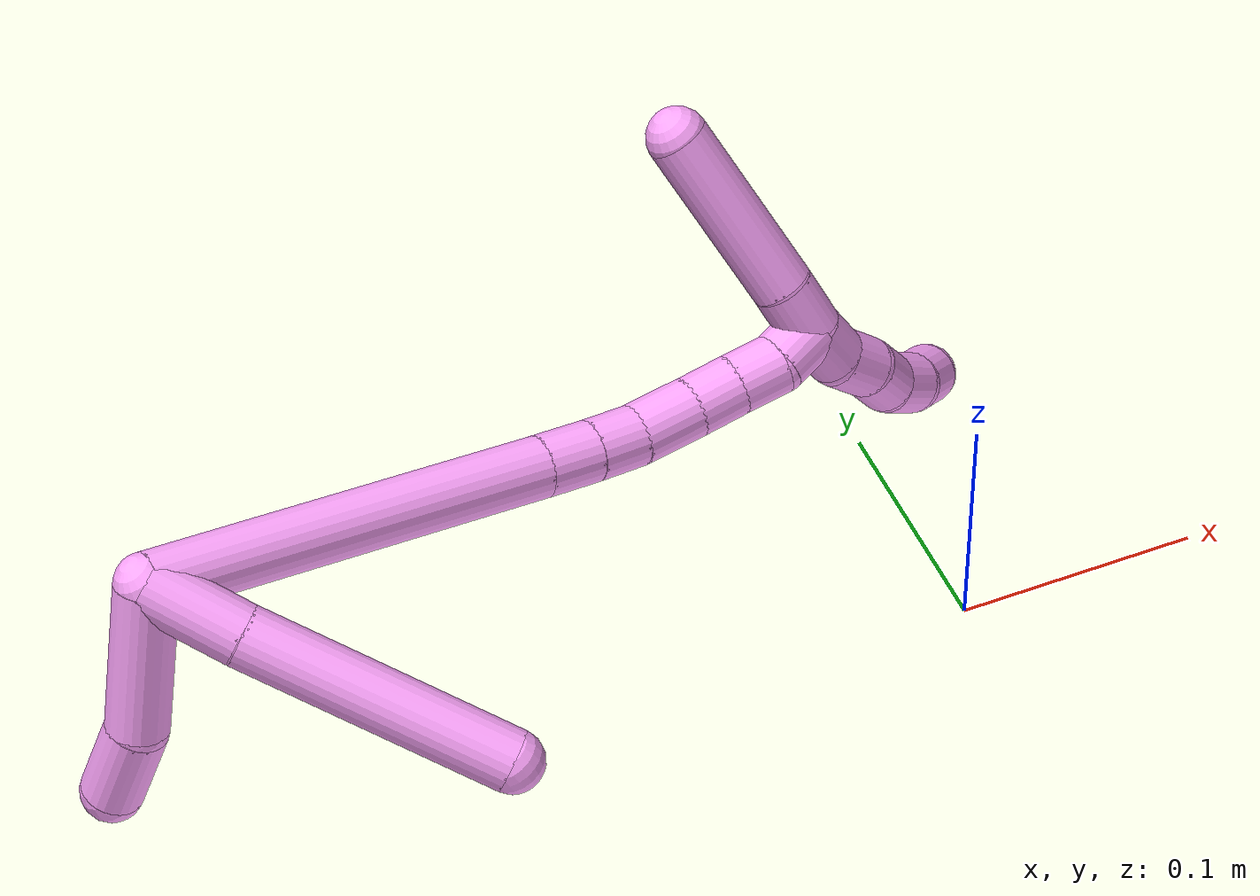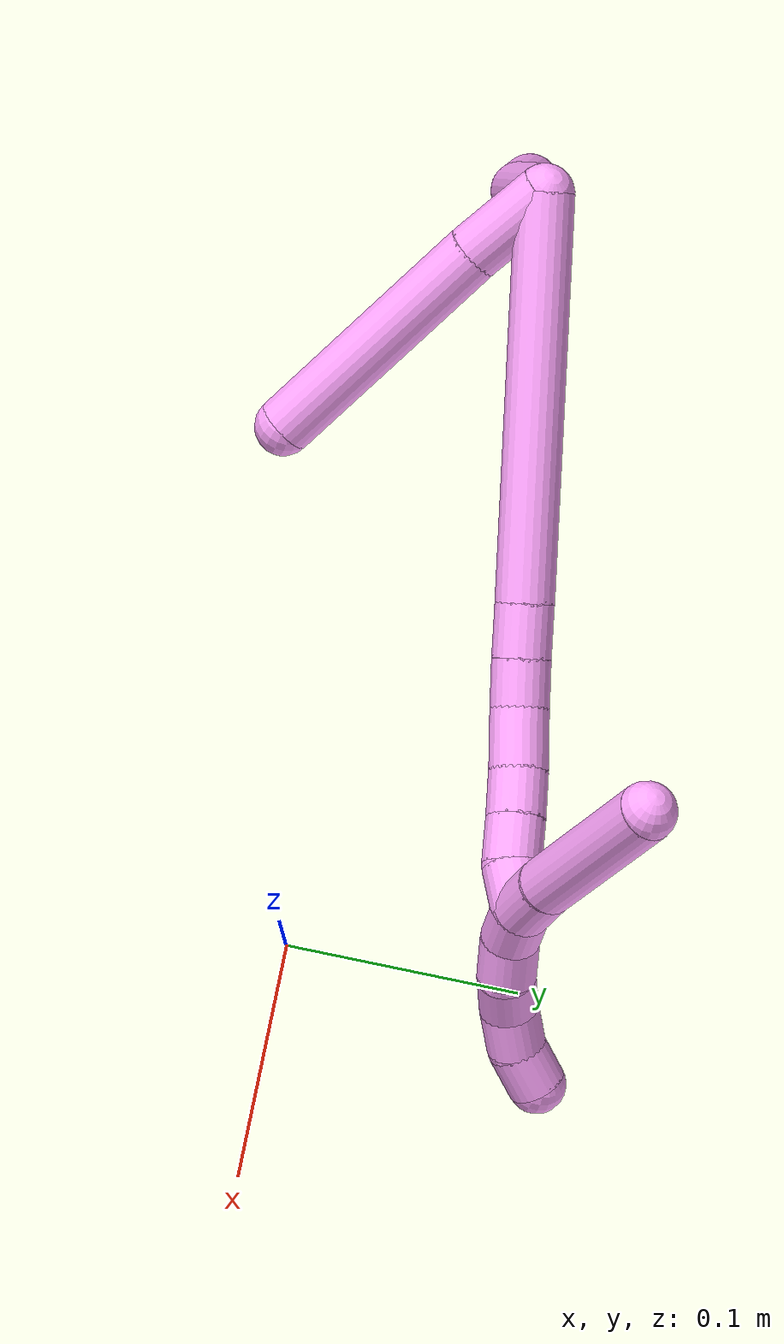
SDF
<sdf version="1.7">
 <world name="default">
  <model name="4">
   <static>0</static>
   <link name="4">
    <collision name="collision-cylinder-e_1_2_8">
     <pose>0.006975 -0.011369 -0.014772 2.48564 0.358029 0.977523</pose>
     <geometry><cylinder><radius>0.0125</radius><length>0.039806</length></cylinder></geometry>
     <surface>
      <friction><ode><mu>1.16</mu><mu2>1.16</mu2><slip1>0</slip1><slip2>0</slip2></ode></friction>
      <contact><ode><kp>1e+06</kp><kd>1</kd><max_vel>0</max_vel><min_depth>0.001</min_depth></ode></contact>
     </surface>
    </collision>
    <visual name="visual-cylinder-e_1_2_8">
     <pose>0.006975 -0.011369 -0.014772 2.48564 0.358029 0.977523</pose>
     <geometry><cylinder><radius>0.0125</radius><length>0.039806</length></cylinder></geometry>
     <material><ambient>1 0.65098 0.996078 1</ambient></material>
    </visual>
    <collision name="collision-cylinder-e_2_8_6">
     <pose>0.035883 -0.052636 -0.070297 2.50865 0.40944 1.13012</pose>
     <geometry><cylinder><radius>0.0125</radius><length>0.110194</length></cylinder></geometry>
     <surface>
      <friction><ode><mu>1.16</mu><mu2>1.16</mu2><slip1>0</slip1><slip2>0</slip2></ode></friction>
      <contact><ode><kp>1e+06</kp><kd>1</kd><max_vel>0</max_vel><min_depth>0.001</min_depth></ode></contact>
     </surface>
    </collision>
    <visual name="visual-cylinder-e_2_8_6">
     <pose>0.035883 -0.052636 -0.070297 2.50865 0.40944 1.13012</pose>
     <geometry><cylinder><radius>0.0125</radius><length>0.110194</length></cylinder></geometry>
     <material><ambient>1 0.65098 0.996078 1</ambient></material>
    </visual>
    <collision name="collision-cylinder-e_1_2_9">
     <pose>-0.019069 0.00307 -0.02559 -3.02221 -0.636999 2.78298</pose>
     <geometry><cylinder><radius>0.0125</radius><length>0.064122</length></cylinder></geometry>
     <surface>
      <friction><ode><mu>1.16</mu><mu2>1.16</mu2><slip1>0</slip1><slip2>0</slip2></ode></friction>
      <contact><ode><kp>1e+06</kp><kd>1</kd><max_vel>0</max_vel><min_depth>0.001</min_depth></ode></contact>
     </surface>
    </collision>
    <visual name="visual-cylinder-e_1_2_9">
     <pose>-0.019069 0.00307 -0.02559 -3.02221 -0.636999 2.78298</pose>
     <geometry><cylinder><radius>0.0125</radius><length>0.064122</length></cylinder></geometry>
     <material><ambient>1 0.65098 0.996078 1</ambient></material>
    </visual>
    <collision name="collision-cylinder-e_2_9_5">
     <pose>-0.049854 0.01252 -0.063174 -2.65269 -0.711622 1.95932</pose>
     <geometry><cylinder><radius>0.0125</radius><length>0.035878</length></cylinder></geometry>
     <surface>
      <friction><ode><mu>1.16</mu><mu2>1.16</mu2><slip1>0</slip1><slip2>0</slip2></ode></friction>
      <contact><ode><kp>1e+06</kp><kd>1</kd><max_vel>0</max_vel><min_depth>0.001</min_depth></ode></contact>
     </surface>
    </collision>
    <visual name="visual-cylinder-e_2_9_5">
     <pose>-0.049854 0.01252 -0.063174 -2.65269 -0.711622 1.95932</pose>
     <geometry><cylinder><radius>0.0125</radius><length>0.035878</length></cylinder></geometry>
     <material><ambient>1 0.65098 0.996078 1</ambient></material>
    </visual>
    <collision name="collision-cylinder-e_1_2_10">
     <pose>0.071239 0.007302 -0.045806 -2.98352 0.993644 -2.85148</pose>
     <geometry><cylinder><radius>0.0125</radius><length>0.170018</length></cylinder></geometry>
     <surface>
      <friction><ode><mu>1.16</mu><mu2>1.16</mu2><slip1>0</slip1><slip2>0</slip2></ode></friction>
      <contact><ode><kp>1e+06</kp><kd>1</kd><max_vel>0</max_vel><min_depth>0.001</min_depth></ode></contact>
     </surface>
    </collision>
    <visual name="visual-cylinder-e_1_2_10">
     <pose>0.071239 0.007302 -0.045806 -2.98352 0.993644 -2.85148</pose>
     <geometry><cylinder><radius>0.0125</radius><length>0.170018</length></cylinder></geometry>
     <material><ambient>1 0.65098 0.996078 1</ambient></material>
    </visual>
    <collision name="collision-cylinder-e_2_10_11">
     <pose>0.15228 0.015388 -0.097575 -3.01073 1.02042 -2.90848</pose>
     <geometry><cylinder><radius>0.0125</radius><length>0.022999</length></cylinder></geometry>
     <surface>
      <friction><ode><mu>1.16</mu><mu2>1.16</mu2><slip1>0</slip1><slip2>0</slip2></ode></friction>
      <contact><ode><kp>1e+06</kp><kd>1</kd><max_vel>0</max_vel><min_depth>0.001</min_depth></ode></contact>
     </surface>
    </collision>
    <visual name="visual-cylinder-e_2_10_11">
     <pose>0.15228 0.015388 -0.097575 -3.01073 1.02042 -2.90848</pose>
     <geometry><cylinder><radius>0.0125</radius><length>0.022999</length></cylinder></geometry>
     <material><ambient>1 0.65098 0.996078 1</ambient></material>
    </visual>
    <collision name="collision-cylinder-e_3_11_12">
     <pose>0.171046 0.01707 -0.108685 -2.96918 1.04308 -2.84304</pose>
     <geometry><cylinder><radius>0.0125</radius><length>0.020753</length></cylinder></geometry>
     <surface>
      <friction><ode><mu>1.16</mu><mu2>1.16</mu2><slip1>0</slip1><slip2>0</slip2></ode></friction>
      <contact><ode><kp>1e+06</kp><kd>1</kd><max_vel>0</max_vel><min_depth>0.001</min_depth></ode></contact>
     </surface>
    </collision>
    <visual name="visual-cylinder-e_3_11_12">
     <pose>0.171046 0.01707 -0.108685 -2.96918 1.04308 -2.84304</pose>
     <geometry><cylinder><radius>0.0125</radius><length>0.020753</length></cylinder></geometry>
     <material><ambient>1 0.65098 0.996078 1</ambient></material>
    </visual>
    <collision name="collision-cylinder-e_4_12_13">
     <pose>0.192181 0.018757 -0.118493 -2.97354 1.20034 -2.8967</pose>
     <geometry><cylinder><radius>0.0125</radius><length>0.026112</length></cylinder></geometry>
     <surface>
      <friction><ode><mu>1.16</mu><mu2>1.16</mu2><slip1>0</slip1><slip2>0</slip2></ode></friction>
      <contact><ode><kp>1e+06</kp><kd>1</kd><max_vel>0</max_vel><min_depth>0.001</min_depth></ode></contact>
     </surface>
    </collision>
    <visual name="visual-cylinder-e_4_12_13">
     <pose>0.192181 0.018757 -0.118493 -2.97354 1.20034 -2.8967</pose>
     <geometry><cylinder><radius>0.0125</radius><length>0.026112</length></cylinder></geometry>
     <material><ambient>1 0.65098 0.996078 1</ambient></material>
    </visual>
    <collision name="collision-cylinder-e_5_13_14">
     <pose>0.213931 0.019551 -0.12611 -3.1403 1.27149 -3.13984</pose>
     <geometry><cylinder><radius>0.0125</radius><length>0.020051</length></cylinder></geometry>
     <surface>
      <friction><ode><mu>1.16</mu><mu2>1.16</mu2><slip1>0</slip1><slip2>0</slip2></ode></friction>
      <contact><ode><kp>1e+06</kp><kd>1</kd><max_vel>0</max_vel><min_depth>0.001</min_depth></ode></contact>
     </surface>
    </collision>
    <visual name="visual-cylinder-e_5_13_14">
     <pose>0.213931 0.019551 -0.12611 -3.1403 1.27149 -3.13984</pose>
     <geometry><cylinder><radius>0.0125</radius><length>0.020051</length></cylinder></geometry>
     <material><ambient>1 0.65098 0.996078 1</ambient></material>
    </visual>
    <collision name="collision-cylinder-e_6_14_15">
     <pose>0.233094 0.019227 -0.132006 3.03062 1.27138 2.99133</pose>
     <geometry><cylinder><radius>0.0125</radius><length>0.020057</length></cylinder></geometry>
     <surface>
      <friction><ode><mu>1.16</mu><mu2>1.16</mu2><slip1>0</slip1><slip2>0</slip2></ode></friction>
      <contact><ode><kp>1e+06</kp><kd>1</kd><max_vel>0</max_vel><min_depth>0.001</min_depth></ode></contact>
     </surface>
    </collision>
    <visual name="visual-cylinder-e_6_14_15">
     <pose>0.233094 0.019227 -0.132006 3.03062 1.27138 2.99133</pose>
     <geometry><cylinder><radius>0.0125</radius><length>0.020057</length></cylinder></geometry>
     <material><ambient>1 0.65098 0.996078 1</ambient></material>
    </visual>
    <collision name="collision-cylinder-e_7_15_1">
     <pose>0.252448 0.0209 -0.135727 -1.94335 1.35445 -1.73351</pose>
     <geometry><cylinder><radius>0.0125</radius><length>0.020009</length></cylinder></geometry>
     <surface>
      <friction><ode><mu>1.16</mu><mu2>1.16</mu2><slip1>0</slip1><slip2>0</slip2></ode></friction>
      <contact><ode><kp>1e+06</kp><kd>1</kd><max_vel>0</max_vel><min_depth>0.001</min_depth></ode></contact>
     </surface>
    </collision>
    <visual name="visual-cylinder-e_7_15_1">
     <pose>0.252448 0.0209 -0.135727 -1.94335 1.35445 -1.73351</pose>
     <geometry><cylinder><radius>0.0125</radius><length>0.020009</length></cylinder></geometry>
     <material><ambient>1 0.65098 0.996078 1</ambient></material>
    </visual>
    <collision name="collision-cylinder-e_1_1_16">
     <pose>0.263366 0.023544 -0.146422 -3.07673 0.11496 -2.11484</pose>
     <geometry><cylinder><radius>0.0125</radius><length>0.02</length></cylinder></geometry>
     <surface>
      <friction><ode><mu>1.16</mu><mu2>1.16</mu2><slip1>0</slip1><slip2>0</slip2></ode></friction>
      <contact><ode><kp>1e+06</kp><kd>1</kd><max_vel>0</max_vel><min_depth>0.001</min_depth></ode></contact>
     </surface>
    </collision>
    <visual name="visual-cylinder-e_1_1_16">
     <pose>0.263366 0.023544 -0.146422 -3.07673 0.11496 -2.11484</pose>
     <geometry><cylinder><radius>0.0125</radius><length>0.02</length></cylinder></geometry>
     <material><ambient>1 0.65098 0.996078 1</ambient></material>
    </visual>
    <collision name="collision-cylinder-e_2_16_17">
     <pose>0.2687 0.025942 -0.165246 -2.94724 0.432007 -2.30544</pose>
     <geometry><cylinder><radius>0.0125</radius><length>0.02</length></cylinder></geometry>
     <surface>
      <friction><ode><mu>1.16</mu><mu2>1.16</mu2><slip1>0</slip1><slip2>0</slip2></ode></friction>
      <contact><ode><kp>1e+06</kp><kd>1</kd><max_vel>0</max_vel><min_depth>0.001</min_depth></ode></contact>
     </surface>
    </collision>
    <visual name="visual-cylinder-e_2_16_17">
     <pose>0.2687 0.025942 -0.165246 -2.94724 0.432007 -2.30544</pose>
     <geometry><cylinder><radius>0.0125</radius><length>0.02</length></cylinder></geometry>
     <material><ambient>1 0.65098 0.996078 1</ambient></material>
    </visual>
    <collision name="collision-cylinder-e_3_17_18">
     <pose>0.275097 0.030983 -0.183338 -2.79783 0.222757 -1.14466</pose>
     <geometry><cylinder><radius>0.0125</radius><length>0.02</length></cylinder></geometry>
     <surface>
      <friction><ode><mu>1.16</mu><mu2>1.16</mu2><slip1>0</slip1><slip2>0</slip2></ode></friction>
      <contact><ode><kp>1e+06</kp><kd>1</kd><max_vel>0</max_vel><min_depth>0.001</min_depth></ode></contact>
     </surface>
    </collision>
    <visual name="visual-cylinder-e_3_17_18">
     <pose>0.275097 0.030983 -0.183338 -2.79783 0.222757 -1.14466</pose>
     <geometry><cylinder><radius>0.0125</radius><length>0.02</length></cylinder></geometry>
     <material><ambient>1 0.65098 0.996078 1</ambient></material>
    </visual>
    <collision name="collision-cylinder-e_4_18_19">
     <pose>0.282212 0.038185 -0.200305 -2.67564 0.512788 -1.67033</pose>
     <geometry><cylinder><radius>0.0125</radius><length>0.02</length></cylinder></geometry>
     <surface>
      <friction><ode><mu>1.16</mu><mu2>1.16</mu2><slip1>0</slip1><slip2>0</slip2></ode></friction>
      <contact><ode><kp>1e+06</kp><kd>1</kd><max_vel>0</max_vel><min_depth>0.001</min_depth></ode></contact>
     </surface>
    </collision>
    <visual name="visual-cylinder-e_4_18_19">
     <pose>0.282212 0.038185 -0.200305 -2.67564 0.512788 -1.67033</pose>
     <geometry><cylinder><radius>0.0125</radius><length>0.02</length></cylinder></geometry>
     <material><ambient>1 0.65098 0.996078 1</ambient></material>
    </visual>
    <collision name="collision-cylinder-e_5_19_4">
     <pose>0.292046 0.048257 -0.214239 -2.35552 0.515312 -1.13234</pose>
     <geometry><cylinder><radius>0.0125</radius><length>0.02</length></cylinder></geometry>
     <surface>
      <friction><ode><mu>1.16</mu><mu2>1.16</mu2><slip1>0</slip1><slip2>0</slip2></ode></friction>
      <contact><ode><kp>1e+06</kp><kd>1</kd><max_vel>0</max_vel><min_depth>0.001</min_depth></ode></contact>
     </surface>
    </collision>
    <visual name="visual-cylinder-e_5_19_4">
     <pose>0.292046 0.048257 -0.214239 -2.35552 0.515312 -1.13234</pose>
     <geometry><cylinder><radius>0.0125</radius><length>0.02</length></cylinder></geometry>
     <material><ambient>1 0.65098 0.996078 1</ambient></material>
    </visual>
    <collision name="collision-cylinder-e_1_1_20">
     <pose>0.262773 0.024549 -0.124655 -0.138229 0.04624 -0.003202</pose>
     <geometry><cylinder><radius>0.0125</radius><length>0.023961</length></cylinder></geometry>
     <surface>
      <friction><ode><mu>1.16</mu><mu2>1.16</mu2><slip1>0</slip1><slip2>0</slip2></ode></friction>
      <contact><ode><kp>1e+06</kp><kd>1</kd><max_vel>0</max_vel><min_depth>0.001</min_depth></ode></contact>
     </surface>
    </collision>
    <visual name="visual-cylinder-e_1_1_20">
     <pose>0.262773 0.024549 -0.124655 -0.138229 0.04624 -0.003202</pose>
     <geometry><cylinder><radius>0.0125</radius><length>0.023961</length></cylinder></geometry>
     <material><ambient>1 0.65098 0.996078 1</ambient></material>
    </visual>
    <collision name="collision-cylinder-e_2_20_3">
     <pose>0.26492 0.035644 -0.076009 -0.251283 0.041911 -0.005294</pose>
     <geometry><cylinder><radius>0.0125</radius><length>0.076039</length></cylinder></geometry>
     <surface>
      <friction><ode><mu>1.16</mu><mu2>1.16</mu2><slip1>0</slip1><slip2>0</slip2></ode></friction>
      <contact><ode><kp>1e+06</kp><kd>1</kd><max_vel>0</max_vel><min_depth>0.001</min_depth></ode></contact>
     </surface>
    </collision>
    <visual name="visual-cylinder-e_2_20_3">
     <pose>0.26492 0.035644 -0.076009 -0.251283 0.041911 -0.005294</pose>
     <geometry><cylinder><radius>0.0125</radius><length>0.076039</length></cylinder></geometry>
     <material><ambient>1 0.65098 0.996078 1</ambient></material>
    </visual>
    <collision name="collision-sphere-3">
     <pose>0.266513 0.045089 -0.039216 0 -0 0</pose>
     <geometry><sphere><radius>0.0125</radius></sphere></geometry>
     <surface>
      <friction><ode><mu>1.16</mu><mu2>1.16</mu2><slip1>0</slip1><slip2>0</slip2></ode></friction>
      <contact><ode><kp>1e+06</kp><kd>1</kd><max_vel>0</max_vel><min_depth>0.001</min_depth></ode></contact>
     </surface>
    </collision>
    <visual name="visual-sphere-3">
     <pose>0.266513 0.045089 -0.039216 0 -0 0</pose>
     <geometry><sphere><radius>0.0125</radius></sphere></geometry>
     <material><ambient>1 0.65098 0.996078 1</ambient></material>
    </visual>
    <collision name="collision-sphere-20">
     <pose>0.263327 0.026198 -0.112802 0 -0 0</pose>
     <geometry><sphere><radius>0.0125</radius></sphere></geometry>
     <surface>
      <friction><ode><mu>1.16</mu><mu2>1.16</mu2><slip1>0</slip1><slip2>0</slip2></ode></friction>
      <contact><ode><kp>1e+06</kp><kd>1</kd><max_vel>0</max_vel><min_depth>0.001</min_depth></ode></contact>
     </surface>
    </collision>
    <visual name="visual-sphere-20">
     <pose>0.263327 0.026198 -0.112802 0 -0 0</pose>
     <geometry><sphere><radius>0.0125</radius></sphere></geometry>
     <material><ambient>1 0.65098 0.996078 1</ambient></material>
    </visual>
    <collision name="collision-sphere-4">
     <pose>0.296974 0.054414 -0.220388 0 -0 0</pose>
     <geometry><sphere><radius>0.0125</radius></sphere></geometry>
     <surface>
      <friction><ode><mu>1.16</mu><mu2>1.16</mu2><slip1>0</slip1><slip2>0</slip2></ode></friction>
      <contact><ode><kp>1e+06</kp><kd>1</kd><max_vel>0</max_vel><min_depth>0.001</min_depth></ode></contact>
     </surface>
    </collision>
    <visual name="visual-sphere-4">
     <pose>0.296974 0.054414 -0.220388 0 -0 0</pose>
     <geometry><sphere><radius>0.0125</radius></sphere></geometry>
     <material><ambient>1 0.65098 0.996078 1</ambient></material>
    </visual>
    <collision name="collision-sphere-10">
     <pose>0.142478 0.014604 -0.091612 0 -0 0</pose>
     <geometry><sphere><radius>0.0125</radius></sphere></geometry>
     <surface>
      <friction><ode><mu>1.16</mu><mu2>1.16</mu2><slip1>0</slip1><slip2>0</slip2></ode></friction>
      <contact><ode><kp>1e+06</kp><kd>1</kd><max_vel>0</max_vel><min_depth>0.001</min_depth></ode></contact>
     </surface>
    </collision>
    <visual name="visual-sphere-10">
     <pose>0.142478 0.014604 -0.091612 0 -0 0</pose>
     <geometry><sphere><radius>0.0125</radius></sphere></geometry>
     <material><ambient>1 0.65098 0.996078 1</ambient></material>
    </visual>
    <collision name="collision-sphere-5">
     <pose>-0.061569 0.0189 -0.075167 0 -0 0</pose>
     <geometry><sphere><radius>0.0125</radius></sphere></geometry>
     <surface>
      <friction><ode><mu>1.16</mu><mu2>1.16</mu2><slip1>0</slip1><slip2>0</slip2></ode></friction>
      <contact><ode><kp>1e+06</kp><kd>1</kd><max_vel>0</max_vel><min_depth>0.001</min_depth></ode></contact>
     </surface>
    </collision>
    <visual name="visual-sphere-5">
     <pose>-0.061569 0.0189 -0.075167 0 -0 0</pose>
     <geometry><sphere><radius>0.0125</radius></sphere></geometry>
     <material><ambient>1 0.65098 0.996078 1</ambient></material>
    </visual>
    <collision name="collision-sphere-6">
     <pose>0.057817 -0.082533 -0.111049 0 -0 0</pose>
     <geometry><sphere><radius>0.0125</radius></sphere></geometry>
     <surface>
      <friction><ode><mu>1.16</mu><mu2>1.16</mu2><slip1>0</slip1><slip2>0</slip2></ode></friction>
      <contact><ode><kp>1e+06</kp><kd>1</kd><max_vel>0</max_vel><min_depth>0.001</min_depth></ode></contact>
     </surface>
    </collision>
    <visual name="visual-sphere-6">
     <pose>0.057817 -0.082533 -0.111049 0 -0 0</pose>
     <geometry><sphere><radius>0.0125</radius></sphere></geometry>
     <material><ambient>1 0.65098 0.996078 1</ambient></material>
    </visual>
    <collision name="collision-sphere-9">
     <pose>-0.038139 0.006139 -0.05118 0 -0 0</pose>
     <geometry><sphere><radius>0.0125</radius></sphere></geometry>
     <surface>
      <friction><ode><mu>1.16</mu><mu2>1.16</mu2><slip1>0</slip1><slip2>0</slip2></ode></friction>
      <contact><ode><kp>1e+06</kp><kd>1</kd><max_vel>0</max_vel><min_depth>0.001</min_depth></ode></contact>
     </surface>
    </collision>
    <visual name="visual-sphere-9">
     <pose>-0.038139 0.006139 -0.05118 0 -0 0</pose>
     <geometry><sphere><radius>0.0125</radius></sphere></geometry>
     <material><ambient>1 0.65098 0.996078 1</ambient></material>
    </visual>
    <collision name="collision-sphere-2">
     <geometry><sphere><radius>0.0125</radius></sphere></geometry>
     <surface>
      <friction><ode><mu>1.16</mu><mu2>1.16</mu2><slip1>0</slip1><slip2>0</slip2></ode></friction>
      <contact><ode><kp>1e+06</kp><kd>1</kd><max_vel>0</max_vel><min_depth>0.001</min_depth></ode></contact>
     </surface>
    </collision>
    <visual name="visual-sphere-2">
     <geometry><sphere><radius>0.0125</radius></sphere></geometry>
     <material><ambient>1 0.65098 0.996078 1</ambient></material>
    </visual>
    <collision name="collision-sphere-19">
     <pose>0.287118 0.0421 -0.20809 0 -0 0</pose>
     <geometry><sphere><radius>0.0125</radius></sphere></geometry>
     <surface>
      <friction><ode><mu>1.16</mu><mu2>1.16</mu2><slip1>0</slip1><slip2>0</slip2></ode></friction>
      <contact><ode><kp>1e+06</kp><kd>1</kd><max_vel>0</max_vel><min_depth>0.001</min_depth></ode></contact>
     </surface>
    </collision>
    <visual name="visual-sphere-19">
     <pose>0.287118 0.0421 -0.20809 0 -0 0</pose>
     <geometry><sphere><radius>0.0125</radius></sphere></geometry>
     <material><ambient>1 0.65098 0.996078 1</ambient></material>
    </visual>
    <collision name="collision-sphere-8">
     <pose>0.013949 -0.022738 -0.029545 0 -0 0</pose>
     <geometry><sphere><radius>0.0125</radius></sphere></geometry>
     <surface>
      <friction><ode><mu>1.16</mu><mu2>1.16</mu2><slip1>0</slip1><slip2>0</slip2></ode></friction>
      <contact><ode><kp>1e+06</kp><kd>1</kd><max_vel>0</max_vel><min_depth>0.001</min_depth></ode></contact>
     </surface>
    </collision>
    <visual name="visual-sphere-8">
     <pose>0.013949 -0.022738 -0.029545 0 -0 0</pose>
     <geometry><sphere><radius>0.0125</radius></sphere></geometry>
     <material><ambient>1 0.65098 0.996078 1</ambient></material>
    </visual>
    <collision name="collision-sphere-11">
     <pose>0.162081 0.016173 -0.103538 0 -0 0</pose>
     <geometry><sphere><radius>0.0125</radius></sphere></geometry>
     <surface>
      <friction><ode><mu>1.16</mu><mu2>1.16</mu2><slip1>0</slip1><slip2>0</slip2></ode></friction>
      <contact><ode><kp>1e+06</kp><kd>1</kd><max_vel>0</max_vel><min_depth>0.001</min_depth></ode></contact>
     </surface>
    </collision>
    <visual name="visual-sphere-11">
     <pose>0.162081 0.016173 -0.103538 0 -0 0</pose>
     <geometry><sphere><radius>0.0125</radius></sphere></geometry>
     <material><ambient>1 0.65098 0.996078 1</ambient></material>
    </visual>
    <collision name="collision-sphere-12">
     <pose>0.180011 0.017966 -0.113833 0 -0 0</pose>
     <geometry><sphere><radius>0.0125</radius></sphere></geometry>
     <surface>
      <friction><ode><mu>1.16</mu><mu2>1.16</mu2><slip1>0</slip1><slip2>0</slip2></ode></friction>
      <contact><ode><kp>1e+06</kp><kd>1</kd><max_vel>0</max_vel><min_depth>0.001</min_depth></ode></contact>
     </surface>
    </collision>
    <visual name="visual-sphere-12">
     <pose>0.180011 0.017966 -0.113833 0 -0 0</pose>
     <geometry><sphere><radius>0.0125</radius></sphere></geometry>
     <material><ambient>1 0.65098 0.996078 1</ambient></material>
    </visual>
    <collision name="collision-sphere-13">
     <pose>0.204351 0.019547 -0.123153 0 -0 0</pose>
     <geometry><sphere><radius>0.0125</radius></sphere></geometry>
     <surface>
      <friction><ode><mu>1.16</mu><mu2>1.16</mu2><slip1>0</slip1><slip2>0</slip2></ode></friction>
      <contact><ode><kp>1e+06</kp><kd>1</kd><max_vel>0</max_vel><min_depth>0.001</min_depth></ode></contact>
     </surface>
    </collision>
    <visual name="visual-sphere-13">
     <pose>0.204351 0.019547 -0.123153 0 -0 0</pose>
     <geometry><sphere><radius>0.0125</radius></sphere></geometry>
     <material><ambient>1 0.65098 0.996078 1</ambient></material>
    </visual>
    <collision name="collision-sphere-14">
     <pose>0.223511 0.019555 -0.129066 0 -0 0</pose>
     <geometry><sphere><radius>0.0125</radius></sphere></geometry>
     <surface>
      <friction><ode><mu>1.16</mu><mu2>1.16</mu2><slip1>0</slip1><slip2>0</slip2></ode></friction>
      <contact><ode><kp>1e+06</kp><kd>1</kd><max_vel>0</max_vel><min_depth>0.001</min_depth></ode></contact>
     </surface>
    </collision>
    <visual name="visual-sphere-14">
     <pose>0.223511 0.019555 -0.129066 0 -0 0</pose>
     <geometry><sphere><radius>0.0125</radius></sphere></geometry>
     <material><ambient>1 0.65098 0.996078 1</ambient></material>
    </visual>
    <collision name="collision-sphere-15">
     <pose>0.242676 0.0189 -0.134946 0 -0 0</pose>
     <geometry><sphere><radius>0.0125</radius></sphere></geometry>
     <surface>
      <friction><ode><mu>1.16</mu><mu2>1.16</mu2><slip1>0</slip1><slip2>0</slip2></ode></friction>
      <contact><ode><kp>1e+06</kp><kd>1</kd><max_vel>0</max_vel><min_depth>0.001</min_depth></ode></contact>
     </surface>
    </collision>
    <visual name="visual-sphere-15">
     <pose>0.242676 0.0189 -0.134946 0 -0 0</pose>
     <geometry><sphere><radius>0.0125</radius></sphere></geometry>
     <material><ambient>1 0.65098 0.996078 1</ambient></material>
    </visual>
    <collision name="collision-sphere-1">
     <pose>0.262219 0.0229 -0.136509 0 -0 0</pose>
     <geometry><sphere><radius>0.0125</radius></sphere></geometry>
     <surface>
      <friction><ode><mu>1.16</mu><mu2>1.16</mu2><slip1>0</slip1><slip2>0</slip2></ode></friction>
      <contact><ode><kp>1e+06</kp><kd>1</kd><max_vel>0</max_vel><min_depth>0.001</min_depth></ode></contact>
     </surface>
    </collision>
    <visual name="visual-sphere-1">
     <pose>0.262219 0.0229 -0.136509 0 -0 0</pose>
     <geometry><sphere><radius>0.0125</radius></sphere></geometry>
     <material><ambient>1 0.65098 0.996078 1</ambient></material>
    </visual>
    <collision name="collision-sphere-18">
     <pose>0.277306 0.03427 -0.19252 0 -0 0</pose>
     <geometry><sphere><radius>0.0125</radius></sphere></geometry>
     <surface>
      <friction><ode><mu>1.16</mu><mu2>1.16</mu2><slip1>0</slip1><slip2>0</slip2></ode></friction>
      <contact><ode><kp>1e+06</kp><kd>1</kd><max_vel>0</max_vel><min_depth>0.001</min_depth></ode></contact>
     </surface>
    </collision>
    <visual name="visual-sphere-18">
     <pose>0.277306 0.03427 -0.19252 0 -0 0</pose>
     <geometry><sphere><radius>0.0125</radius></sphere></geometry>
     <material><ambient>1 0.65098 0.996078 1</ambient></material>
    </visual>
    <collision name="collision-sphere-16">
     <pose>0.264513 0.024188 -0.156335 0 -0 0</pose>
     <geometry><sphere><radius>0.0125</radius></sphere></geometry>
     <surface>
      <friction><ode><mu>1.16</mu><mu2>1.16</mu2><slip1>0</slip1><slip2>0</slip2></ode></friction>
      <contact><ode><kp>1e+06</kp><kd>1</kd><max_vel>0</max_vel><min_depth>0.001</min_depth></ode></contact>
     </surface>
    </collision>
    <visual name="visual-sphere-16">
     <pose>0.264513 0.024188 -0.156335 0 -0 0</pose>
     <geometry><sphere><radius>0.0125</radius></sphere></geometry>
     <material><ambient>1 0.65098 0.996078 1</ambient></material>
    </visual>
    <collision name="collision-sphere-17">
     <pose>0.272887 0.027696 -0.174156 0 -0 0</pose>
     <geometry><sphere><radius>0.0125</radius></sphere></geometry>
     <surface>
      <friction><ode><mu>1.16</mu><mu2>1.16</mu2><slip1>0</slip1><slip2>0</slip2></ode></friction>
      <contact><ode><kp>1e+06</kp><kd>1</kd><max_vel>0</max_vel><min_depth>0.001</min_depth></ode></contact>
     </surface>
    </collision>
    <visual name="visual-sphere-17">
     <pose>0.272887 0.027696 -0.174156 0 -0 0</pose>
     <geometry><sphere><radius>0.0125</radius></sphere></geometry>
     <material><ambient>1 0.65098 0.996078 1</ambient></material>
    </visual>
    <inertial>
     <pose>0.12465 0.00622 -0.083297 0 -0 0</pose>
     <mass>0.75</mass>
     <inertia>
      <ixx>-8.8e-05</ixx>
      <ixy>0</ixy>
      <ixz>0</ixz>
      <iyy>0.000513</iyy>
      <iyz>0</iyz>
      <izz>-0.000404</izz>
     </inertia>
    </inertial>
   </link>
   <pose>-0.317473 0.04474 0.106588 -0.298636 -0.394423 0.232778</pose>
  </model>
 </world>
</sdf>
